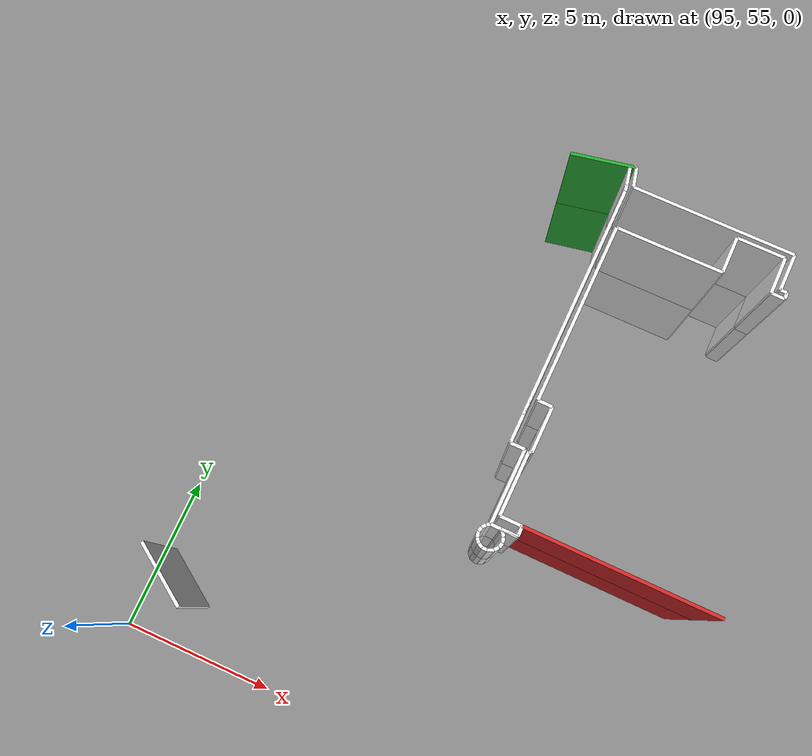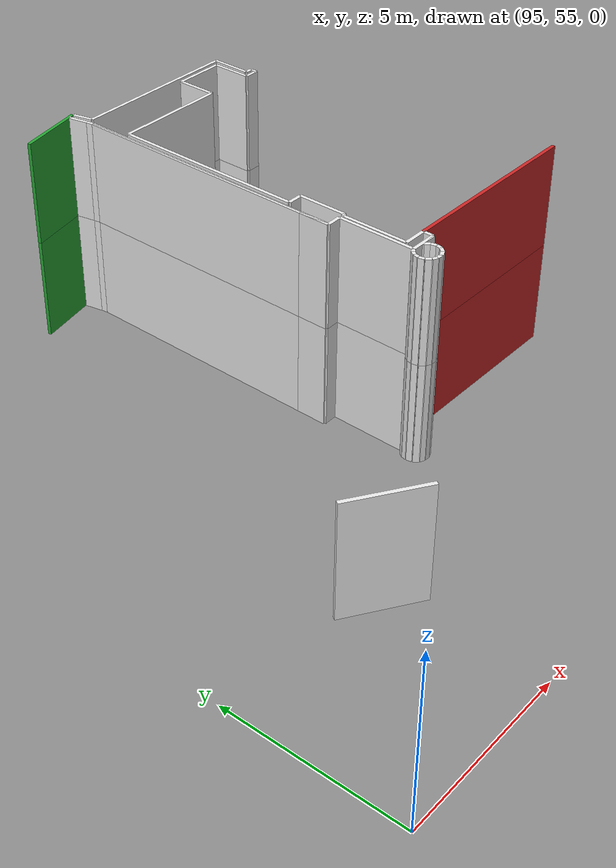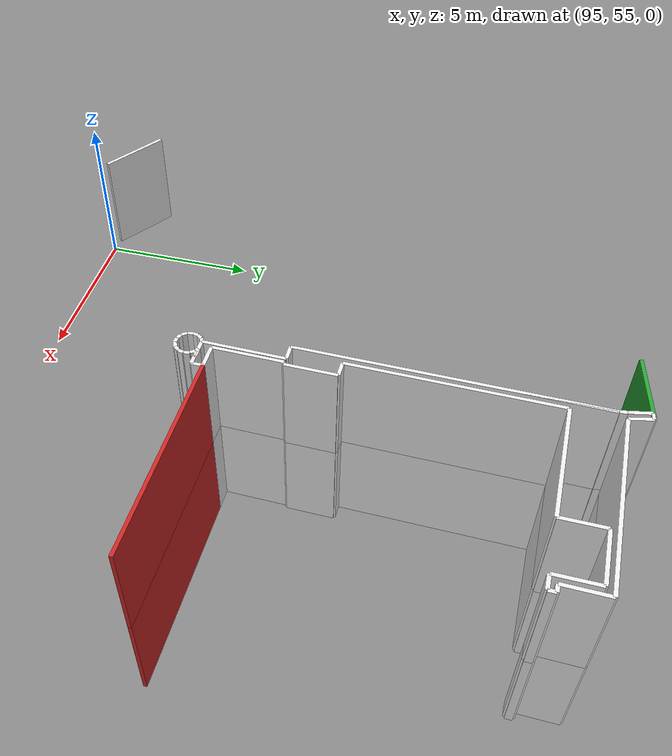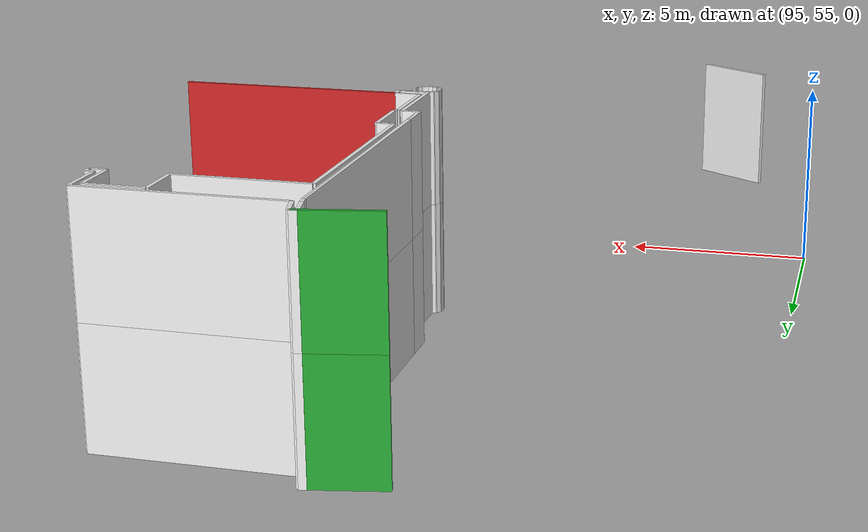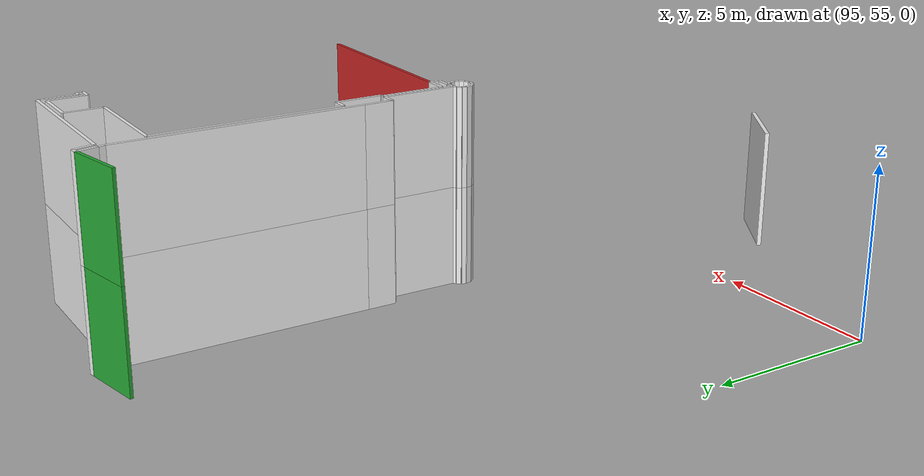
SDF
<sdf version="1.6">
 <world name="default">
  <model name="wall_103.2_73.0_1.5">
   <static>true</static>
   <pose>103.15500000014435 73.02000000025146 1.5 0 0 -2.9552965370366153</pose>
   <link name="link">
    <visual name="visual">
     <geometry><box><size>1.9436306230085285 0.1 3</size></box></geometry>
     <material>
      <script><uri>file://media/materials/scripts/gazebo.material</uri><name>Gazebo/Green</name></script>
     </material>
    </visual>
    <collision name="collision"><geometry><box><size>1.9436306230085285 0.1 3</size></box></geometry></collision>
   </link>
  </model>
  <model name="wall_108.0_62.3_1.5">
   <static>true</static>
   <pose>107.99499999999534 62.34499999997206 1.5 0 0 -0.012258580285916719</pose>
   <link name="link">
    <visual name="visual">
     <geometry><box><size>5.710429055644689 0.1 3</size></box></geometry>
     <material>
      <script><uri>file://media/materials/scripts/gazebo.material</uri><name>Gazebo/Red</name></script>
     </material>
    </visual>
    <collision name="collision"><geometry><box><size>5.710429055644689 0.1 3</size></box></geometry></collision>
   </link>
  </model>
  <model name="wall_103.2_73.0_4.5">
   <static>true</static>
   <pose>103.15500000014435 73.02000000025146 4.5 0 0 -2.9552965370366153</pose>
   <link name="link">
    <visual name="visual">
     <geometry><box><size>1.9436306230085285 0.1 3</size></box></geometry>
     <material>
      <script><uri>file://media/materials/scripts/gazebo.material</uri><name>Gazebo/Green</name></script>
     </material>
    </visual>
    <collision name="collision"><geometry><box><size>1.9436306230085285 0.1 3</size></box></geometry></collision>
   </link>
  </model>
  <model name="wall_108.0_62.3_4.5">
   <static>true</static>
   <pose>107.99499999999534 62.34499999997206 4.5 0 0 -0.012258580285916719</pose>
   <link name="link">
    <visual name="visual">
     <geometry><box><size>5.710429055644689 0.1 3</size></box></geometry>
     <material>
      <script><uri>file://media/materials/scripts/gazebo.material</uri><name>Gazebo/Red</name></script>
     </material>
    </visual>
    <collision name="collision"><geometry><box><size>5.710429055644689 0.1 3</size></box></geometry></collision>
   </link>
  </model>
  <model name="wall_104.2_72.9_1.5">
   <static>true</static>
   <pose>104.17999999999302 72.9000000001397 1.5 0 0 -1.3415643935301684</pose>
   <link name="link">
    <visual name="visual">
     <geometry><box><size>0.6161168721238449 0.1 3</size></box></geometry>
     <material>
      <script><uri>file://media/materials/scripts/gazebo.material</uri><name>Gazebo/White</name></script>
     </material>
    </visual>
    <collision name="collision"><geometry><box><size>0.6161168721238449 0.1 3</size></box></geometry></collision>
   </link>
  </model>
  <model name="wall_106.7_72.6_1.5">
   <static>true</static>
   <pose>106.70000000001164 72.56499999994412 1.5 0 0 -0.01428474264813742</pose>
   <link name="link">
    <visual name="visual">
     <geometry><box><size>4.900499974519937 0.1 3</size></box></geometry>
     <material>
      <script><uri>file://media/materials/scripts/gazebo.material</uri><name>Gazebo/White</name></script>
     </material>
    </visual>
    <collision name="collision"><geometry><box><size>4.900499974519937 0.1 3</size></box></geometry></collision>
   </link>
  </model>
  <model name="wall_109.1_72.0_1.5">
   <static>true</static>
   <pose>109.14000000001397 71.95499999984168 1.5 0 0 -1.5881858781018272</pose>
   <link name="link">
    <visual name="visual">
     <geometry><box><size>1.1501738998023476 0.1 3</size></box></geometry>
     <material>
      <script><uri>file://media/materials/scripts/gazebo.material</uri><name>Gazebo/White</name></script>
     </material>
    </visual>
    <collision name="collision"><geometry><box><size>1.1501738998023476 0.1 3</size></box></geometry></collision>
   </link>
  </model>
  <model name="wall_109.2_71.4_1.5">
   <static>true</static>
   <pose>109.23000000001048 71.37999999988824 1.5 0 0 0.0</pose>
   <link name="link">
    <visual name="visual">
     <geometry><box><size>0.20000000001164153 0.1 3</size></box></geometry>
     <material>
      <script><uri>file://media/materials/scripts/gazebo.material</uri><name>Gazebo/White</name></script>
     </material>
    </visual>
    <collision name="collision"><geometry><box><size>0.20000000001164153 0.1 3</size></box></geometry></collision>
   </link>
  </model>
  <model name="wall_109.3_71.3_1.5">
   <static>true</static>
   <pose>109.3300000000163 71.28000000002794 1.5 0 0 -1.5707963267948966</pose>
   <link name="link">
    <visual name="visual">
     <geometry><box><size>0.19999999972060323 0.1 3</size></box></geometry>
     <material>
      <script><uri>file://media/materials/scripts/gazebo.material</uri><name>Gazebo/White</name></script>
     </material>
    </visual>
    <collision name="collision"><geometry><box><size>0.19999999972060323 0.1 3</size></box></geometry></collision>
   </link>
  </model>
  <model name="wall_109.1_71.2_1.5">
   <static>true</static>
   <pose>109.13000000000466 71.18500000005588 1.5 0 0 3.116597860530772</pose>
   <link name="link">
    <visual name="visual">
     <geometry><box><size>0.40012498049254075 0.1 3</size></box></geometry>
     <material>
      <script><uri>file://media/materials/scripts/gazebo.material</uri><name>Gazebo/White</name></script>
     </material>
    </visual>
    <collision name="collision"><geometry><box><size>0.40012498049254075 0.1 3</size></box></geometry></collision>
   </link>
  </model>
  <model name="wall_108.9_71.8_1.5">
   <static>true</static>
   <pose>108.93499999999767 71.76000000000931 1.5 0 0 1.562024621943288</pose>
   <link name="link">
    <visual name="visual">
     <geometry><box><size>1.1400438589359028 0.1 3</size></box></geometry>
     <material>
      <script><uri>file://media/materials/scripts/gazebo.material</uri><name>Gazebo/White</name></script>
     </material>
    </visual>
    <collision name="collision"><geometry><box><size>1.1400438589359028 0.1 3</size></box></geometry></collision>
   </link>
  </model>
  <model name="wall_108.2_72.3_1.5">
   <static>true</static>
   <pose>108.21499999999651 72.34000000008382 1.5 0 0 3.127800424740227</pose>
   <link name="link">
    <visual name="visual">
     <geometry><box><size>1.4501379244866694 0.1 3</size></box></geometry>
     <material>
      <script><uri>file://media/materials/scripts/gazebo.material</uri><name>Gazebo/White</name></script>
     </material>
    </visual>
    <collision name="collision"><geometry><box><size>1.4501379244866694 0.1 3</size></box></geometry></collision>
   </link>
  </model>
  <model name="wall_107.5_71.8_1.5">
   <static>true</static>
   <pose>107.48499999998603 71.78000000002794 1.5 0 0 -1.579568031646505</pose>
   <link name="link">
    <visual name="visual">
     <geometry><box><size>1.1400438589359028 0.1 3</size></box></geometry>
     <material>
      <script><uri>file://media/materials/scripts/gazebo.material</uri><name>Gazebo/White</name></script>
     </material>
    </visual>
    <collision name="collision"><geometry><box><size>1.1400438589359028 0.1 3</size></box></geometry></collision>
   </link>
  </model>
  <model name="wall_105.9_71.2_1.5">
   <static>true</static>
   <pose>105.875 71.22999999998137 1.5 0 0 3.1291322393040306</pose>
   <link name="link">
    <visual name="visual">
     <geometry><box><size>3.2102492114731245 0.1 3</size></box></geometry>
     <material>
      <script><uri>file://media/materials/scripts/gazebo.material</uri><name>Gazebo/White</name></script>
     </material>
    </visual>
    <collision name="collision"><geometry><box><size>3.2102492114731245 0.1 3</size></box></geometry></collision>
   </link>
  </model>
  <model name="wall_104.2_68.5_1.5">
   <static>true</static>
   <pose>104.23000000001048 68.47500000009313 1.5 0 0 -1.585209743017202</pose>
   <link name="link">
    <visual name="visual">
     <geometry><box><size>5.550576546444078 0.1 3</size></box></geometry>
     <material>
      <script><uri>file://media/materials/scripts/gazebo.material</uri><name>Gazebo/White</name></script>
     </material>
    </visual>
    <collision name="collision"><geometry><box><size>5.550576546444078 0.1 3</size></box></geometry></collision>
   </link>
  </model>
  <model name="wall_104.4_65.7_1.5">
   <static>true</static>
   <pose>104.40499999999884 65.69500000006519 1.5 0 0 -0.023251623373661365</pose>
   <link name="link">
    <visual name="visual">
     <geometry><box><size>0.430116263350778 0.1 3</size></box></geometry>
     <material>
      <script><uri>file://media/materials/scripts/gazebo.material</uri><name>Gazebo/White</name></script>
     </material>
    </visual>
    <collision name="collision"><geometry><box><size>0.430116263350778 0.1 3</size></box></geometry></collision>
   </link>
  </model>
  <model name="wall_104.6_65.0_1.5">
   <static>true</static>
   <pose>104.60999999998603 64.99499999987893 1.5 0 0 -1.5851838231958704</pose>
   <link name="link">
    <visual name="visual">
     <geometry><box><size>1.390143877576424 0.1 3</size></box></geometry>
     <material>
      <script><uri>file://media/materials/scripts/gazebo.material</uri><name>Gazebo/White</name></script>
     </material>
    </visual>
    <collision name="collision"><geometry><box><size>1.390143877576424 0.1 3</size></box></geometry></collision>
   </link>
  </model>
  <model name="wall_104.6_64.3_1.5">
   <static>true</static>
   <pose>104.55999999999767 64.29999999981374 1.5 0 0 3.141592653589793</pose>
   <link name="link">
    <visual name="visual">
     <geometry><box><size>0.07999999995809048 0.1 3</size></box></geometry>
     <material>
      <script><uri>file://media/materials/scripts/gazebo.material</uri><name>Gazebo/White</name></script>
     </material>
    </visual>
    <collision name="collision"><geometry><box><size>0.07999999995809048 0.1 3</size></box></geometry></collision>
   </link>
  </model>
  <model name="wall_104.5_63.3_1.5">
   <static>true</static>
   <pose>104.50500000000466 63.34499999997206 1.5 0 0 -1.5865018416432637</pose>
   <link name="link">
    <visual name="visual">
     <geometry><box><size>1.9102355872488803 0.1 3</size></box></geometry>
     <material>
      <script><uri>file://media/materials/scripts/gazebo.material</uri><name>Gazebo/White</name></script>
     </material>
    </visual>
    <collision name="collision"><geometry><box><size>1.9102355872488803 0.1 3</size></box></geometry></collision>
   </link>
  </model>
  <model name="wall_104.8_62.4_1.5">
   <static>true</static>
   <pose>104.81500000000233 62.38500000000931 1.5 0 0 -0.015383402152485081</pose>
   <link name="link">
    <visual name="visual">
     <geometry><box><size>0.6500769185528055 0.1 3</size></box></geometry>
     <material>
      <script><uri>file://media/materials/scripts/gazebo.material</uri><name>Gazebo/White</name></script>
     </material>
    </visual>
    <collision name="collision"><geometry><box><size>0.6500769185528055 0.1 3</size></box></geometry></collision>
   </link>
  </model>
  <model name="wall_104.0_73.2_1.5">
   <static>true</static>
   <pose>104.01999999998952 73.18500000005588 1.5 0 0 -2.9764439747593046</pose>
   <link name="link">
    <visual name="visual">
     <geometry><box><size>0.18248287594492707 0.1 3</size></box></geometry>
     <material>
      <script><uri>file://media/materials/scripts/gazebo.material</uri><name>Gazebo/White</name></script>
     </material>
    </visual>
    <collision name="collision"><geometry><box><size>0.18248287594492707 0.1 3</size></box></geometry></collision>
   </link>
  </model>
  <model name="wall_104.0_72.9_1.5">
   <static>true</static>
   <pose>103.98999999999069 72.875 1.5 0 0 -1.3701434494332612</pose>
   <link name="link">
    <visual name="visual">
     <geometry><box><size>0.6020797287926647 0.1 3</size></box></geometry>
     <material>
      <script><uri>file://media/materials/scripts/gazebo.material</uri><name>Gazebo/White</name></script>
     </material>
    </visual>
    <collision name="collision"><geometry><box><size>0.6020797287926647 0.1 3</size></box></geometry></collision>
   </link>
  </model>
  <model name="wall_104.1_72.5_1.5">
   <static>true</static>
   <pose>104.06500000000233 72.48500000010245 1.5 0 0 -1.4141944496240997</pose>
   <link name="link">
    <visual name="visual">
     <geometry><box><size>0.19235384056587543 0.1 3</size></box></geometry>
     <material>
      <script><uri>file://media/materials/scripts/gazebo.material</uri><name>Gazebo/White</name></script>
     </material>
    </visual>
    <collision name="collision"><geometry><box><size>0.19235384056587543 0.1 3</size></box></geometry></collision>
   </link>
  </model>
  <model name="wall_104.0_68.8_1.5">
   <static>true</static>
   <pose>104.02999999999884 68.78500000014901 1.5 0 0 -1.5846650630720618</pose>
   <link name="link">
    <visual name="visual">
     <geometry><box><size>7.2106934478918046 0.1 3</size></box></geometry>
     <material>
      <script><uri>file://media/materials/scripts/gazebo.material</uri><name>Gazebo/White</name></script>
     </material>
    </visual>
    <collision name="collision"><geometry><box><size>7.2106934478918046 0.1 3</size></box></geometry></collision>
   </link>
  </model>
  <model name="wall_104.0_64.7_1.5">
   <static>true</static>
   <pose>103.97499999997672 64.74500000011176 1.5 0 0 -1.5822900735191543</pose>
   <link name="link">
    <visual name="visual">
     <geometry><box><size>0.8700574694781066 0.1 3</size></box></geometry>
     <material>
      <script><uri>file://media/materials/scripts/gazebo.material</uri><name>Gazebo/White</name></script>
     </material>
    </visual>
    <collision name="collision"><geometry><box><size>0.8700574694781066 0.1 3</size></box></geometry></collision>
   </link>
  </model>
  <model name="wall_104.2_64.3_1.5">
   <static>true</static>
   <pose>104.18499999999767 64.31000000005588 1.5 0 0 0.0</pose>
   <link name="link">
    <visual name="visual">
     <geometry><box><size>0.43000000005122274 0.1 3</size></box></geometry>
     <material>
      <script><uri>file://media/materials/scripts/gazebo.material</uri><name>Gazebo/White</name></script>
     </material>
    </visual>
    <collision name="collision"><geometry><box><size>0.43000000005122274 0.1 3</size></box></geometry></collision>
   </link>
  </model>
  <model name="wall_104.4_63.2_1.5">
   <static>true</static>
   <pose>104.38000000000466 63.199999999953434 1.5 0 0 -1.5888123953640647</pose>
   <link name="link">
    <visual name="visual">
     <geometry><box><size>2.2203603313229805 0.1 3</size></box></geometry>
     <material>
      <script><uri>file://media/materials/scripts/gazebo.material</uri><name>Gazebo/White</name></script>
     </material>
    </visual>
    <collision name="collision"><geometry><box><size>2.2203603313229805 0.1 3</size></box></geometry></collision>
   </link>
  </model>
  <model name="wall_104.3_62.1_1.5">
   <static>true</static>
   <pose>104.30499999999302 62.05999999982305 1.5 0 0 -2.642245931464764</pose>
   <link name="link">
    <visual name="visual">
     <geometry><box><size>0.12529964087591056 0.1 3</size></box></geometry>
     <material>
      <script><uri>file://media/materials/scripts/gazebo.material</uri><name>Gazebo/White</name></script>
     </material>
    </visual>
    <collision name="collision"><geometry><box><size>0.12529964087591056 0.1 3</size></box></geometry></collision>
   </link>
  </model>
  <model name="wall_104.2_62.0_1.5">
   <static>true</static>
   <pose>104.20999999999185 61.9749999998603 1.5 0 0 -2.199592613871065</pose>
   <link name="link">
    <visual name="visual">
     <geometry><box><size>0.13601470499149335 0.1 3</size></box></geometry>
     <material>
      <script><uri>file://media/materials/scripts/gazebo.material</uri><name>Gazebo/White</name></script>
     </material>
    </visual>
    <collision name="collision"><geometry><box><size>0.13601470499149335 0.1 3</size></box></geometry></collision>
   </link>
  </model>
  <model name="wall_104.2_61.9_1.5">
   <static>true</static>
   <pose>104.15499999999884 61.85499999998137 1.5 0 0 -1.7975951748160817</pose>
   <link name="link">
    <visual name="visual">
     <geometry><box><size>0.13341664052556057 0.1 3</size></box></geometry>
     <material>
      <script><uri>file://media/materials/scripts/gazebo.material</uri><name>Gazebo/White</name></script>
     </material>
    </visual>
    <collision name="collision"><geometry><box><size>0.13341664052556057 0.1 3</size></box></geometry></collision>
   </link>
  </model>
  <model name="wall_104.2_61.7_1.5">
   <static>true</static>
   <pose>104.15499999999884 61.70999999996275 1.5 0 0 -1.3854483771506443</pose>
   <link name="link">
    <visual name="visual">
     <geometry><box><size>0.16278820610187839 0.1 3</size></box></geometry>
     <material>
      <script><uri>file://media/materials/scripts/gazebo.material</uri><name>Gazebo/White</name></script>
     </material>
    </visual>
    <collision name="collision"><geometry><box><size>0.16278820610187839 0.1 3</size></box></geometry></collision>
   </link>
  </model>
  <model name="wall_104.2_61.6_1.5">
   <static>true</static>
   <pose>104.22000000000116 61.56499999994412 1.5 0 0 -0.9151006999691199</pose>
   <link name="link">
    <visual name="visual">
     <geometry><box><size>0.16401219460127853 0.1 3</size></box></geometry>
     <material>
      <script><uri>file://media/materials/scripts/gazebo.material</uri><name>Gazebo/White</name></script>
     </material>
    </visual>
    <collision name="collision"><geometry><box><size>0.16401219460127853 0.1 3</size></box></geometry></collision>
   </link>
  </model>
  <model name="wall_104.3_61.5_1.5">
   <static>true</static>
   <pose>104.33500000002095 61.46999999997206 1.5 0 0 -0.4324077759112656</pose>
   <link name="link">
    <visual name="visual">
     <geometry><box><size>0.14317821066040826 0.1 3</size></box></geometry>
     <material>
      <script><uri>file://media/materials/scripts/gazebo.material</uri><name>Gazebo/White</name></script>
     </material>
    </visual>
    <collision name="collision"><geometry><box><size>0.14317821066040826 0.1 3</size></box></geometry></collision>
   </link>
  </model>
  <model name="wall_104.5_61.4_1.5">
   <static>true</static>
   <pose>104.47000000000116 61.43500000005588 1.5 0 0 -0.07130746321929742</pose>
   <link name="link">
    <visual name="visual">
     <geometry><box><size>0.14035668841613164 0.1 3</size></box></geometry>
     <material>
      <script><uri>file://media/materials/scripts/gazebo.material</uri><name>Gazebo/White</name></script>
     </material>
    </visual>
    <collision name="collision"><geometry><box><size>0.14035668841613164 0.1 3</size></box></geometry></collision>
   </link>
  </model>
  <model name="wall_104.6_61.5_1.5">
   <static>true</static>
   <pose>104.61999999999534 61.46500000008382 1.5 0 0 0.41241044064316335</pose>
   <link name="link">
    <visual name="visual">
     <geometry><box><size>0.17464249192840064 0.1 3</size></box></geometry>
     <material>
      <script><uri>file://media/materials/scripts/gazebo.material</uri><name>Gazebo/White</name></script>
     </material>
    </visual>
    <collision name="collision"><geometry><box><size>0.17464249192840064 0.1 3</size></box></geometry></collision>
   </link>
  </model>
  <model name="wall_104.8_61.6_1.5">
   <static>true</static>
   <pose>104.75 61.56000000005588 1.5 0 0 0.8760580511707278</pose>
   <link name="link">
    <visual name="visual">
     <geometry><box><size>0.15620499358908305 0.1 3</size></box></geometry>
     <material>
      <script><uri>file://media/materials/scripts/gazebo.material</uri><name>Gazebo/White</name></script>
     </material>
    </visual>
    <collision name="collision"><geometry><box><size>0.15620499358908305 0.1 3</size></box></geometry></collision>
   </link>
  </model>
  <model name="wall_104.8_61.7_1.5">
   <static>true</static>
   <pose>104.82000000000698 61.68999999994412 1.5 0 0 1.292496666911179</pose>
   <link name="link">
    <visual name="visual">
     <geometry><box><size>0.1456021974734685 0.1 3</size></box></geometry>
     <material>
      <script><uri>file://media/materials/scripts/gazebo.material</uri><name>Gazebo/White</name></script>
     </material>
    </visual>
    <collision name="collision"><geometry><box><size>0.1456021974734685 0.1 3</size></box></geometry></collision>
   </link>
  </model>
  <model name="wall_104.8_61.8_1.5">
   <static>true</static>
   <pose>104.82000000000698 61.83999999985099 1.5 0 0 1.8157749899217608</pose>
   <link name="link">
    <visual name="visual">
     <geometry><box><size>0.16492422517830407 0.1 3</size></box></geometry>
     <material>
      <script><uri>file://media/materials/scripts/gazebo.material</uri><name>Gazebo/White</name></script>
     </material>
    </visual>
    <collision name="collision"><geometry><box><size>0.16492422517830407 0.1 3</size></box></geometry></collision>
   </link>
  </model>
  <model name="wall_104.8_62.0_1.5">
   <static>true</static>
   <pose>104.75500000000466 61.984999999869615 1.5 0 0 2.1763409906326974</pose>
   <link name="link">
    <visual name="visual">
     <geometry><box><size>0.1581138828979777 0.1 3</size></box></geometry>
     <material>
      <script><uri>file://media/materials/scripts/gazebo.material</uri><name>Gazebo/White</name></script>
     </material>
    </visual>
    <collision name="collision"><geometry><box><size>0.1581138828979777 0.1 3</size></box></geometry></collision>
   </link>
  </model>
  <model name="wall_104.7_62.1_1.5">
   <static>true</static>
   <pose>104.6700000000128 62.06999999983236 1.5 0 0 2.6779450442979487</pose>
   <link name="link">
    <visual name="visual">
     <geometry><box><size>0.0894427191312291 0.1 3</size></box></geometry>
     <material>
      <script><uri>file://media/materials/scripts/gazebo.material</uri><name>Gazebo/White</name></script>
     </material>
    </visual>
    <collision name="collision"><geometry><box><size>0.0894427191312291 0.1 3</size></box></geometry></collision>
   </link>
  </model>
  <model name="wall_104.9_62.1_1.5">
   <static>true</static>
   <pose>104.88500000000931 62.08499999996275 1.5 0 0 -0.01960533041874575</pose>
   <link name="link">
    <visual name="visual">
     <geometry><box><size>0.5100980297992036 0.1 3</size></box></geometry>
     <material>
      <script><uri>file://media/materials/scripts/gazebo.material</uri><name>Gazebo/White</name></script>
     </material>
    </visual>
    <collision name="collision"><geometry><box><size>0.5100980297992036 0.1 3</size></box></geometry></collision>
   </link>
  </model>
  <model name="wall_105.1_62.2_1.5">
   <static>true</static>
   <pose>105.14000000001397 62.22999999998137 1.5 0 0 1.5707963267948966</pose>
   <link name="link">
    <visual name="visual">
     <geometry><box><size>0.2999999998137355 0.1 3</size></box></geometry>
     <material>
      <script><uri>file://media/materials/scripts/gazebo.material</uri><name>Gazebo/White</name></script>
     </material>
    </visual>
    <collision name="collision"><geometry><box><size>0.2999999998137355 0.1 3</size></box></geometry></collision>
   </link>
  </model>
  <model name="wall_104.0_68.4_1.5">
   <static>true</static>
   <pose>104.02499999999418 68.35000000009313 1.5 0 0 -1.5844093472281489</pose>
   <link name="link">
    <visual name="visual">
     <geometry><box><size>8.080748727761168 0.1 3</size></box></geometry>
     <material>
      <script><uri>file://media/materials/scripts/gazebo.material</uri><name>Gazebo/White</name></script>
     </material>
    </visual>
    <collision name="collision"><geometry><box><size>8.080748727761168 0.1 3</size></box></geometry></collision>
   </link>
  </model>
  <model name="wall_104.8_62.1_1.5">
   <static>true</static>
   <pose>104.75 62.08499999996275 1.5 0 0 -0.012819810185927727</pose>
   <link name="link">
    <visual name="visual">
     <geometry><box><size>0.7800640999553278 0.1 3</size></box></geometry>
     <material>
      <script><uri>file://media/materials/scripts/gazebo.material</uri><name>Gazebo/White</name></script>
     </material>
    </visual>
    <collision name="collision"><geometry><box><size>0.7800640999553278 0.1 3</size></box></geometry></collision>
   </link>
  </model>
  <model name="wall_104.2_72.9_4.5">
   <static>true</static>
   <pose>104.17999999999302 72.9000000001397 4.5 0 0 -1.3415643935301684</pose>
   <link name="link">
    <visual name="visual">
     <geometry><box><size>0.6161168721238449 0.1 3</size></box></geometry>
     <material>
      <script><uri>file://media/materials/scripts/gazebo.material</uri><name>Gazebo/White</name></script>
     </material>
    </visual>
    <collision name="collision"><geometry><box><size>0.6161168721238449 0.1 3</size></box></geometry></collision>
   </link>
  </model>
  <model name="wall_106.7_72.6_4.5">
   <static>true</static>
   <pose>106.70000000001164 72.56499999994412 4.5 0 0 -0.01428474264813742</pose>
   <link name="link">
    <visual name="visual">
     <geometry><box><size>4.900499974519937 0.1 3</size></box></geometry>
     <material>
      <script><uri>file://media/materials/scripts/gazebo.material</uri><name>Gazebo/White</name></script>
     </material>
    </visual>
    <collision name="collision"><geometry><box><size>4.900499974519937 0.1 3</size></box></geometry></collision>
   </link>
  </model>
  <model name="wall_109.1_72.0_4.5">
   <static>true</static>
   <pose>109.14000000001397 71.95499999984168 4.5 0 0 -1.5881858781018272</pose>
   <link name="link">
    <visual name="visual">
     <geometry><box><size>1.1501738998023476 0.1 3</size></box></geometry>
     <material>
      <script><uri>file://media/materials/scripts/gazebo.material</uri><name>Gazebo/White</name></script>
     </material>
    </visual>
    <collision name="collision"><geometry><box><size>1.1501738998023476 0.1 3</size></box></geometry></collision>
   </link>
  </model>
  <model name="wall_109.2_71.4_4.5">
   <static>true</static>
   <pose>109.23000000001048 71.37999999988824 4.5 0 0 0.0</pose>
   <link name="link">
    <visual name="visual">
     <geometry><box><size>0.20000000001164153 0.1 3</size></box></geometry>
     <material>
      <script><uri>file://media/materials/scripts/gazebo.material</uri><name>Gazebo/White</name></script>
     </material>
    </visual>
    <collision name="collision"><geometry><box><size>0.20000000001164153 0.1 3</size></box></geometry></collision>
   </link>
  </model>
  <model name="wall_109.3_71.3_4.5">
   <static>true</static>
   <pose>109.3300000000163 71.28000000002794 4.5 0 0 -1.5707963267948966</pose>
   <link name="link">
    <visual name="visual">
     <geometry><box><size>0.19999999972060323 0.1 3</size></box></geometry>
     <material>
      <script><uri>file://media/materials/scripts/gazebo.material</uri><name>Gazebo/White</name></script>
     </material>
    </visual>
    <collision name="collision"><geometry><box><size>0.19999999972060323 0.1 3</size></box></geometry></collision>
   </link>
  </model>
  <model name="wall_109.1_71.2_4.5">
   <static>true</static>
   <pose>109.13000000000466 71.18500000005588 4.5 0 0 3.116597860530772</pose>
   <link name="link">
    <visual name="visual">
     <geometry><box><size>0.40012498049254075 0.1 3</size></box></geometry>
     <material>
      <script><uri>file://media/materials/scripts/gazebo.material</uri><name>Gazebo/White</name></script>
     </material>
    </visual>
    <collision name="collision"><geometry><box><size>0.40012498049254075 0.1 3</size></box></geometry></collision>
   </link>
  </model>
  <model name="wall_108.9_71.8_4.5">
   <static>true</static>
   <pose>108.93499999999767 71.76000000000931 4.5 0 0 1.562024621943288</pose>
   <link name="link">
    <visual name="visual">
     <geometry><box><size>1.1400438589359028 0.1 3</size></box></geometry>
     <material>
      <script><uri>file://media/materials/scripts/gazebo.material</uri><name>Gazebo/White</name></script>
     </material>
    </visual>
    <collision name="collision"><geometry><box><size>1.1400438589359028 0.1 3</size></box></geometry></collision>
   </link>
  </model>
  <model name="wall_108.2_72.3_4.5">
   <static>true</static>
   <pose>108.21499999999651 72.34000000008382 4.5 0 0 3.127800424740227</pose>
   <link name="link">
    <visual name="visual">
     <geometry><box><size>1.4501379244866694 0.1 3</size></box></geometry>
     <material>
      <script><uri>file://media/materials/scripts/gazebo.material</uri><name>Gazebo/White</name></script>
     </material>
    </visual>
    <collision name="collision"><geometry><box><size>1.4501379244866694 0.1 3</size></box></geometry></collision>
   </link>
  </model>
  <model name="wall_107.5_71.8_4.5">
   <static>true</static>
   <pose>107.48499999998603 71.78000000002794 4.5 0 0 -1.579568031646505</pose>
   <link name="link">
    <visual name="visual">
     <geometry><box><size>1.1400438589359028 0.1 3</size></box></geometry>
     <material>
      <script><uri>file://media/materials/scripts/gazebo.material</uri><name>Gazebo/White</name></script>
     </material>
    </visual>
    <collision name="collision"><geometry><box><size>1.1400438589359028 0.1 3</size></box></geometry></collision>
   </link>
  </model>
  <model name="wall_105.9_71.2_4.5">
   <static>true</static>
   <pose>105.875 71.22999999998137 4.5 0 0 3.1291322393040306</pose>
   <link name="link">
    <visual name="visual">
     <geometry><box><size>3.2102492114731245 0.1 3</size></box></geometry>
     <material>
      <script><uri>file://media/materials/scripts/gazebo.material</uri><name>Gazebo/White</name></script>
     </material>
    </visual>
    <collision name="collision"><geometry><box><size>3.2102492114731245 0.1 3</size></box></geometry></collision>
   </link>
  </model>
  <model name="wall_104.2_68.5_4.5">
   <static>true</static>
   <pose>104.23000000001048 68.47500000009313 4.5 0 0 -1.585209743017202</pose>
   <link name="link">
    <visual name="visual">
     <geometry><box><size>5.550576546444078 0.1 3</size></box></geometry>
     <material>
      <script><uri>file://media/materials/scripts/gazebo.material</uri><name>Gazebo/White</name></script>
     </material>
    </visual>
    <collision name="collision"><geometry><box><size>5.550576546444078 0.1 3</size></box></geometry></collision>
   </link>
  </model>
  <model name="wall_104.4_65.7_4.5">
   <static>true</static>
   <pose>104.40499999999884 65.69500000006519 4.5 0 0 -0.023251623373661365</pose>
   <link name="link">
    <visual name="visual">
     <geometry><box><size>0.430116263350778 0.1 3</size></box></geometry>
     <material>
      <script><uri>file://media/materials/scripts/gazebo.material</uri><name>Gazebo/White</name></script>
     </material>
    </visual>
    <collision name="collision"><geometry><box><size>0.430116263350778 0.1 3</size></box></geometry></collision>
   </link>
  </model>
  <model name="wall_104.6_65.0_4.5">
   <static>true</static>
   <pose>104.60999999998603 64.99499999987893 4.5 0 0 -1.5851838231958704</pose>
   <link name="link">
    <visual name="visual">
     <geometry><box><size>1.390143877576424 0.1 3</size></box></geometry>
     <material>
      <script><uri>file://media/materials/scripts/gazebo.material</uri><name>Gazebo/White</name></script>
     </material>
    </visual>
    <collision name="collision"><geometry><box><size>1.390143877576424 0.1 3</size></box></geometry></collision>
   </link>
  </model>
  <model name="wall_104.6_64.3_4.5">
   <static>true</static>
   <pose>104.55999999999767 64.29999999981374 4.5 0 0 3.141592653589793</pose>
   <link name="link">
    <visual name="visual">
     <geometry><box><size>0.07999999995809048 0.1 3</size></box></geometry>
     <material>
      <script><uri>file://media/materials/scripts/gazebo.material</uri><name>Gazebo/White</name></script>
     </material>
    </visual>
    <collision name="collision"><geometry><box><size>0.07999999995809048 0.1 3</size></box></geometry></collision>
   </link>
  </model>
  <model name="wall_104.5_63.3_4.5">
   <static>true</static>
   <pose>104.50500000000466 63.34499999997206 4.5 0 0 -1.5865018416432637</pose>
   <link name="link">
    <visual name="visual">
     <geometry><box><size>1.9102355872488803 0.1 3</size></box></geometry>
     <material>
      <script><uri>file://media/materials/scripts/gazebo.material</uri><name>Gazebo/White</name></script>
     </material>
    </visual>
    <collision name="collision"><geometry><box><size>1.9102355872488803 0.1 3</size></box></geometry></collision>
   </link>
  </model>
  <model name="wall_104.8_62.4_4.5">
   <static>true</static>
   <pose>104.81500000000233 62.38500000000931 4.5 0 0 -0.015383402152485081</pose>
   <link name="link">
    <visual name="visual">
     <geometry><box><size>0.6500769185528055 0.1 3</size></box></geometry>
     <material>
      <script><uri>file://media/materials/scripts/gazebo.material</uri><name>Gazebo/White</name></script>
     </material>
    </visual>
    <collision name="collision"><geometry><box><size>0.6500769185528055 0.1 3</size></box></geometry></collision>
   </link>
  </model>
  <model name="wall_97.0_57.4_4.5">
   <static>true</static>
   <pose>97.0 57.36499999999069 4.5 0 0 2.552201162109747</pose>
   <link name="link">
    <visual name="visual">
     <geometry><box><size>1.9969226324068652 0.1 3</size></box></geometry>
     <material>
      <script><uri>file://media/materials/scripts/gazebo.material</uri><name>Gazebo/White</name></script>
     </material>
    </visual>
    <collision name="collision"><geometry><box><size>1.9969226324068652 0.1 3</size></box></geometry></collision>
   </link>
  </model>
  <model name="wall_104.0_73.2_4.5">
   <static>true</static>
   <pose>104.01999999998952 73.18500000005588 4.5 0 0 -2.9764439747593046</pose>
   <link name="link">
    <visual name="visual">
     <geometry><box><size>0.18248287594492707 0.1 3</size></box></geometry>
     <material>
      <script><uri>file://media/materials/scripts/gazebo.material</uri><name>Gazebo/White</name></script>
     </material>
    </visual>
    <collision name="collision"><geometry><box><size>0.18248287594492707 0.1 3</size></box></geometry></collision>
   </link>
  </model>
  <model name="wall_104.0_72.9_4.5">
   <static>true</static>
   <pose>103.98999999999069 72.875 4.5 0 0 -1.3701434494332612</pose>
   <link name="link">
    <visual name="visual">
     <geometry><box><size>0.6020797287926647 0.1 3</size></box></geometry>
     <material>
      <script><uri>file://media/materials/scripts/gazebo.material</uri><name>Gazebo/White</name></script>
     </material>
    </visual>
    <collision name="collision"><geometry><box><size>0.6020797287926647 0.1 3</size></box></geometry></collision>
   </link>
  </model>
  <model name="wall_104.1_72.5_4.5">
   <static>true</static>
   <pose>104.06500000000233 72.48500000010245 4.5 0 0 -1.4141944496240997</pose>
   <link name="link">
    <visual name="visual">
     <geometry><box><size>0.19235384056587543 0.1 3</size></box></geometry>
     <material>
      <script><uri>file://media/materials/scripts/gazebo.material</uri><name>Gazebo/White</name></script>
     </material>
    </visual>
    <collision name="collision"><geometry><box><size>0.19235384056587543 0.1 3</size></box></geometry></collision>
   </link>
  </model>
  <model name="wall_104.0_68.8_4.5">
   <static>true</static>
   <pose>104.02999999999884 68.78500000014901 4.5 0 0 -1.5846650630720618</pose>
   <link name="link">
    <visual name="visual">
     <geometry><box><size>7.2106934478918046 0.1 3</size></box></geometry>
     <material>
      <script><uri>file://media/materials/scripts/gazebo.material</uri><name>Gazebo/White</name></script>
     </material>
    </visual>
    <collision name="collision"><geometry><box><size>7.2106934478918046 0.1 3</size></box></geometry></collision>
   </link>
  </model>
  <model name="wall_104.0_64.7_4.5">
   <static>true</static>
   <pose>103.97499999997672 64.74500000011176 4.5 0 0 -1.5822900735191543</pose>
   <link name="link">
    <visual name="visual">
     <geometry><box><size>0.8700574694781066 0.1 3</size></box></geometry>
     <material>
      <script><uri>file://media/materials/scripts/gazebo.material</uri><name>Gazebo/White</name></script>
     </material>
    </visual>
    <collision name="collision"><geometry><box><size>0.8700574694781066 0.1 3</size></box></geometry></collision>
   </link>
  </model>
  <model name="wall_104.2_64.3_4.5">
   <static>true</static>
   <pose>104.18499999999767 64.31000000005588 4.5 0 0 0.0</pose>
   <link name="link">
    <visual name="visual">
     <geometry><box><size>0.43000000005122274 0.1 3</size></box></geometry>
     <material>
      <script><uri>file://media/materials/scripts/gazebo.material</uri><name>Gazebo/White</name></script>
     </material>
    </visual>
    <collision name="collision"><geometry><box><size>0.43000000005122274 0.1 3</size></box></geometry></collision>
   </link>
  </model>
  <model name="wall_104.4_63.2_4.5">
   <static>true</static>
   <pose>104.38000000000466 63.199999999953434 4.5 0 0 -1.5888123953640647</pose>
   <link name="link">
    <visual name="visual">
     <geometry><box><size>2.2203603313229805 0.1 3</size></box></geometry>
     <material>
      <script><uri>file://media/materials/scripts/gazebo.material</uri><name>Gazebo/White</name></script>
     </material>
    </visual>
    <collision name="collision"><geometry><box><size>2.2203603313229805 0.1 3</size></box></geometry></collision>
   </link>
  </model>
  <model name="wall_104.3_62.1_4.5">
   <static>true</static>
   <pose>104.30499999999302 62.05999999982305 4.5 0 0 -2.642245931464764</pose>
   <link name="link">
    <visual name="visual">
     <geometry><box><size>0.12529964087591056 0.1 3</size></box></geometry>
     <material>
      <script><uri>file://media/materials/scripts/gazebo.material</uri><name>Gazebo/White</name></script>
     </material>
    </visual>
    <collision name="collision"><geometry><box><size>0.12529964087591056 0.1 3</size></box></geometry></collision>
   </link>
  </model>
  <model name="wall_104.2_62.0_4.5">
   <static>true</static>
   <pose>104.20999999999185 61.9749999998603 4.5 0 0 -2.199592613871065</pose>
   <link name="link">
    <visual name="visual">
     <geometry><box><size>0.13601470499149335 0.1 3</size></box></geometry>
     <material>
      <script><uri>file://media/materials/scripts/gazebo.material</uri><name>Gazebo/White</name></script>
     </material>
    </visual>
    <collision name="collision"><geometry><box><size>0.13601470499149335 0.1 3</size></box></geometry></collision>
   </link>
  </model>
  <model name="wall_104.2_61.9_4.5">
   <static>true</static>
   <pose>104.15499999999884 61.85499999998137 4.5 0 0 -1.7975951748160817</pose>
   <link name="link">
    <visual name="visual">
     <geometry><box><size>0.13341664052556057 0.1 3</size></box></geometry>
     <material>
      <script><uri>file://media/materials/scripts/gazebo.material</uri><name>Gazebo/White</name></script>
     </material>
    </visual>
    <collision name="collision"><geometry><box><size>0.13341664052556057 0.1 3</size></box></geometry></collision>
   </link>
  </model>
  <model name="wall_104.2_61.7_4.5">
   <static>true</static>
   <pose>104.15499999999884 61.70999999996275 4.5 0 0 -1.3854483771506443</pose>
   <link name="link">
    <visual name="visual">
     <geometry><box><size>0.16278820610187839 0.1 3</size></box></geometry>
     <material>
      <script><uri>file://media/materials/scripts/gazebo.material</uri><name>Gazebo/White</name></script>
     </material>
    </visual>
    <collision name="collision"><geometry><box><size>0.16278820610187839 0.1 3</size></box></geometry></collision>
   </link>
  </model>
  <model name="wall_104.2_61.6_4.5">
   <static>true</static>
   <pose>104.22000000000116 61.56499999994412 4.5 0 0 -0.9151006999691199</pose>
   <link name="link">
    <visual name="visual">
     <geometry><box><size>0.16401219460127853 0.1 3</size></box></geometry>
     <material>
      <script><uri>file://media/materials/scripts/gazebo.material</uri><name>Gazebo/White</name></script>
     </material>
    </visual>
    <collision name="collision"><geometry><box><size>0.16401219460127853 0.1 3</size></box></geometry></collision>
   </link>
  </model>
  <model name="wall_104.3_61.5_4.5">
   <static>true</static>
   <pose>104.33500000002095 61.46999999997206 4.5 0 0 -0.4324077759112656</pose>
   <link name="link">
    <visual name="visual">
     <geometry><box><size>0.14317821066040826 0.1 3</size></box></geometry>
     <material>
      <script><uri>file://media/materials/scripts/gazebo.material</uri><name>Gazebo/White</name></script>
     </material>
    </visual>
    <collision name="collision"><geometry><box><size>0.14317821066040826 0.1 3</size></box></geometry></collision>
   </link>
  </model>
  <model name="wall_104.5_61.4_4.5">
   <static>true</static>
   <pose>104.47000000000116 61.43500000005588 4.5 0 0 -0.07130746321929742</pose>
   <link name="link">
    <visual name="visual">
     <geometry><box><size>0.14035668841613164 0.1 3</size></box></geometry>
     <material>
      <script><uri>file://media/materials/scripts/gazebo.material</uri><name>Gazebo/White</name></script>
     </material>
    </visual>
    <collision name="collision"><geometry><box><size>0.14035668841613164 0.1 3</size></box></geometry></collision>
   </link>
  </model>
  <model name="wall_104.6_61.5_4.5">
   <static>true</static>
   <pose>104.61999999999534 61.46500000008382 4.5 0 0 0.41241044064316335</pose>
   <link name="link">
    <visual name="visual">
     <geometry><box><size>0.17464249192840064 0.1 3</size></box></geometry>
     <material>
      <script><uri>file://media/materials/scripts/gazebo.material</uri><name>Gazebo/White</name></script>
     </material>
    </visual>
    <collision name="collision"><geometry><box><size>0.17464249192840064 0.1 3</size></box></geometry></collision>
   </link>
  </model>
  <model name="wall_104.8_61.6_4.5">
   <static>true</static>
   <pose>104.75 61.56000000005588 4.5 0 0 0.8760580511707278</pose>
   <link name="link">
    <visual name="visual">
     <geometry><box><size>0.15620499358908305 0.1 3</size></box></geometry>
     <material>
      <script><uri>file://media/materials/scripts/gazebo.material</uri><name>Gazebo/White</name></script>
     </material>
    </visual>
    <collision name="collision"><geometry><box><size>0.15620499358908305 0.1 3</size></box></geometry></collision>
   </link>
  </model>
  <model name="wall_104.8_61.7_4.5">
   <static>true</static>
   <pose>104.82000000000698 61.68999999994412 4.5 0 0 1.292496666911179</pose>
   <link name="link">
    <visual name="visual">
     <geometry><box><size>0.1456021974734685 0.1 3</size></box></geometry>
     <material>
      <script><uri>file://media/materials/scripts/gazebo.material</uri><name>Gazebo/White</name></script>
     </material>
    </visual>
    <collision name="collision"><geometry><box><size>0.1456021974734685 0.1 3</size></box></geometry></collision>
   </link>
  </model>
  <model name="wall_104.8_61.8_4.5">
   <static>true</static>
   <pose>104.82000000000698 61.83999999985099 4.5 0 0 1.8157749899217608</pose>
   <link name="link">
    <visual name="visual">
     <geometry><box><size>0.16492422517830407 0.1 3</size></box></geometry>
     <material>
      <script><uri>file://media/materials/scripts/gazebo.material</uri><name>Gazebo/White</name></script>
     </material>
    </visual>
    <collision name="collision"><geometry><box><size>0.16492422517830407 0.1 3</size></box></geometry></collision>
   </link>
  </model>
  <model name="wall_104.8_62.0_4.5">
   <static>true</static>
   <pose>104.75500000000466 61.984999999869615 4.5 0 0 2.1763409906326974</pose>
   <link name="link">
    <visual name="visual">
     <geometry><box><size>0.1581138828979777 0.1 3</size></box></geometry>
     <material>
      <script><uri>file://media/materials/scripts/gazebo.material</uri><name>Gazebo/White</name></script>
     </material>
    </visual>
    <collision name="collision"><geometry><box><size>0.1581138828979777 0.1 3</size></box></geometry></collision>
   </link>
  </model>
  <model name="wall_104.7_62.1_4.5">
   <static>true</static>
   <pose>104.6700000000128 62.06999999983236 4.5 0 0 2.6779450442979487</pose>
   <link name="link">
    <visual name="visual">
     <geometry><box><size>0.0894427191312291 0.1 3</size></box></geometry>
     <material>
      <script><uri>file://media/materials/scripts/gazebo.material</uri><name>Gazebo/White</name></script>
     </material>
    </visual>
    <collision name="collision"><geometry><box><size>0.0894427191312291 0.1 3</size></box></geometry></collision>
   </link>
  </model>
  <model name="wall_104.9_62.1_4.5">
   <static>true</static>
   <pose>104.88500000000931 62.08499999996275 4.5 0 0 -0.01960533041874575</pose>
   <link name="link">
    <visual name="visual">
     <geometry><box><size>0.5100980297992036 0.1 3</size></box></geometry>
     <material>
      <script><uri>file://media/materials/scripts/gazebo.material</uri><name>Gazebo/White</name></script>
     </material>
    </visual>
    <collision name="collision"><geometry><box><size>0.5100980297992036 0.1 3</size></box></geometry></collision>
   </link>
  </model>
  <model name="wall_105.1_62.2_4.5">
   <static>true</static>
   <pose>105.14000000001397 62.22999999998137 4.5 0 0 1.5707963267948966</pose>
   <link name="link">
    <visual name="visual">
     <geometry><box><size>0.2999999998137355 0.1 3</size></box></geometry>
     <material>
      <script><uri>file://media/materials/scripts/gazebo.material</uri><name>Gazebo/White</name></script>
     </material>
    </visual>
    <collision name="collision"><geometry><box><size>0.2999999998137355 0.1 3</size></box></geometry></collision>
   </link>
  </model>
  <model name="wall_104.8_62.1_4.5">
   <static>true</static>
   <pose>104.75 62.08499999996275 4.5 0 0 3.1287728434038655</pose>
   <link name="link">
    <visual name="visual">
     <geometry><box><size>0.7800640999553278 0.1 3</size></box></geometry>
     <material>
      <script><uri>file://media/materials/scripts/gazebo.material</uri><name>Gazebo/White</name></script>
     </material>
    </visual>
    <collision name="collision"><geometry><box><size>0.7800640999553278 0.1 3</size></box></geometry></collision>
   </link>
  </model>
  <model name="wall_104.0_68.4_4.5">
   <static>true</static>
   <pose>104.02499999999418 68.35000000009313 4.5 0 0 1.5571833063616443</pose>
   <link name="link">
    <visual name="visual">
     <geometry><box><size>8.080748727761168 0.1 3</size></box></geometry>
     <material>
      <script><uri>file://media/materials/scripts/gazebo.material</uri><name>Gazebo/White</name></script>
     </material>
    </visual>
    <collision name="collision"><geometry><box><size>8.080748727761168 0.1 3</size></box></geometry></collision>
   </link>
  </model>
 </world>
</sdf>
